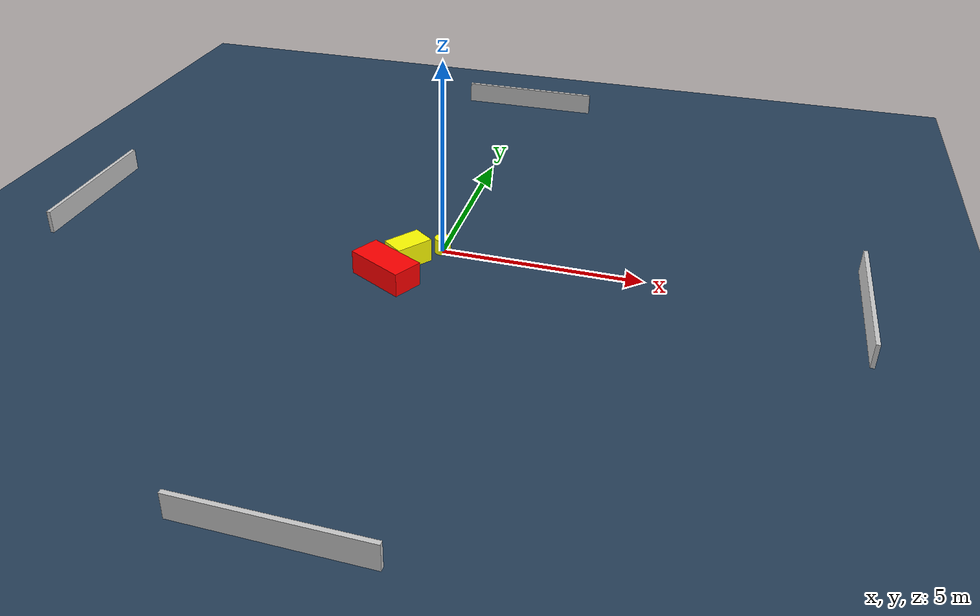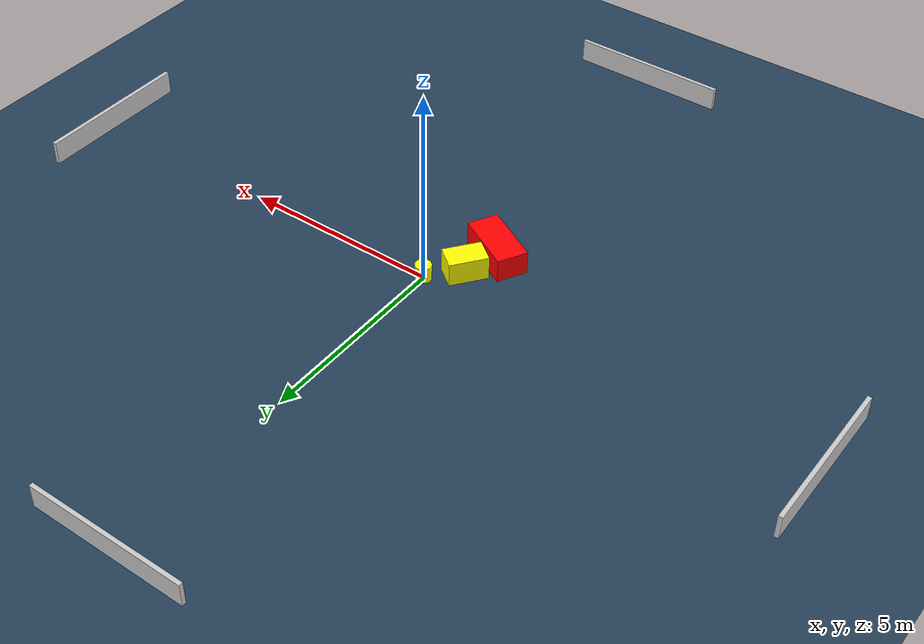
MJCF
<?xml version="1.0" ?>
<mujoco model="generated_environment">
  <option timestep="0.01" integrator="RK4" cone="elliptic"/>
  <default>
    <geom density="1"/>
  </default>
  <asset>
    <texture builtin="gradient" height="3072" name="skybox" rgb1="0.3 0.5 0.7" rgb2="0 0 0" type="skybox" width="512"/>
    <texture builtin="checker" height="300" name="groundplane" rgb1="0.2 0.3 0.4" rgb2="0.1 0.2 0.3" type="2d" width="300"/>
    <material name="groundplane" reflectance="0.2" texrepeat="5 5" texture="groundplane"/>
  </asset>
  <worldbody>
    <light dir="0 0 -1" directional="true" pos="0 0 1.5"/>
    <geom condim="3" friction="0.5 0.005 0.001" material="groundplane" name="floor" pos="0 0 0" size="0 0 0.05" type="plane"/>
    <body name="walls">
      <geom name="wall_1" condim="4" pos="-10.0 0.0 0.3" rgba="0.800000011920929 0.800000011920929 0.800000011920929 1.0" size="0.05 2.0 0.3" type="box"/>
      <geom name="wall_2" condim="4" pos="10.0 0.0 0.3" rgba="0.800000011920929 0.800000011920929 0.800000011920929 1.0" size="0.05 2.0 0.3" type="box"/>
      <geom name="wall_3" condim="4" pos="0.0 -10.0 0.3" rgba="0.800000011920929 0.800000011920929 0.800000011920929 1.0" size="2.0 0.05 0.3" type="box"/>
      <geom name="wall_4" condim="4" pos="0.0 10.0 0.3" rgba="0.800000011920929 0.800000011920929 0.800000011920929 1.0" size="2.0 0.05 0.3" type="box"/>
    </body>
    <body name="robot">
      <joint name="joint_x" type="slide" pos="0 0 0" axis="1 0 0"/>
      <joint name="joint_y" type="slide" pos="0 0 0" axis="0 1 0"/>
      <geom name="robot" type="cylinder" pos="0.0 0.0 0.2" size="0.2 0.2 0.0" mass="5.0" friction="1.0 0.005 0.0001" condim="4" rgba="1.0 1.0 0.0 1.0"/>
    </body>
    <body name="obstacle_1_movable">
      <geom name="obstacle_1_movable" condim="4" pos="-0.6762964939301627 -0.6966190381645104 0.3" euler="0 0 323.0979235153056" friction="0.0 0.005 0.001" rgba="1.0 1.0 0.0 1.0" size="0.30460683141428635 0.48093559730062097 0.3" type="box" mass="0.1"/>
      <joint type="free"/>
    </body>
    <body name="obstacle_2_static">
      <geom name="obstacle_2_static" condim="4" pos="-0.9365651191157776 -1.6068629689739955 0.3" euler="0 0 331.77529172011856" friction="0.0 0.005 0.001" rgba="1.0 0.0 0.0 1.0" size="0.7705557255767523 0.3859240648861459 0.3" type="box"/>
    </body>
  </worldbody>
  <actuator>
    <motor name="actuator_x" joint="joint_x" gear="1" ctrlrange="-1 1"/>
    <motor name="actuator_y" joint="joint_y" gear="1" ctrlrange="-1 1"/>
  </actuator>
</mujoco>
